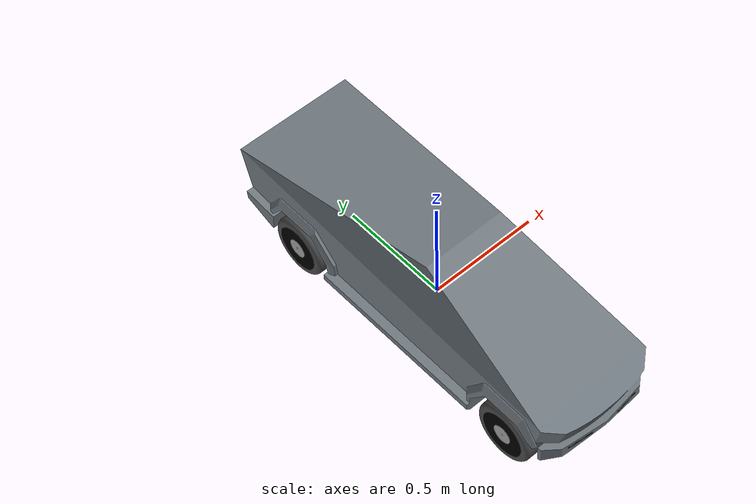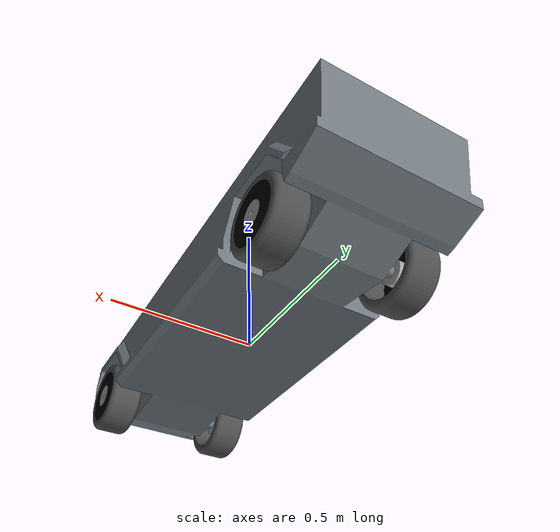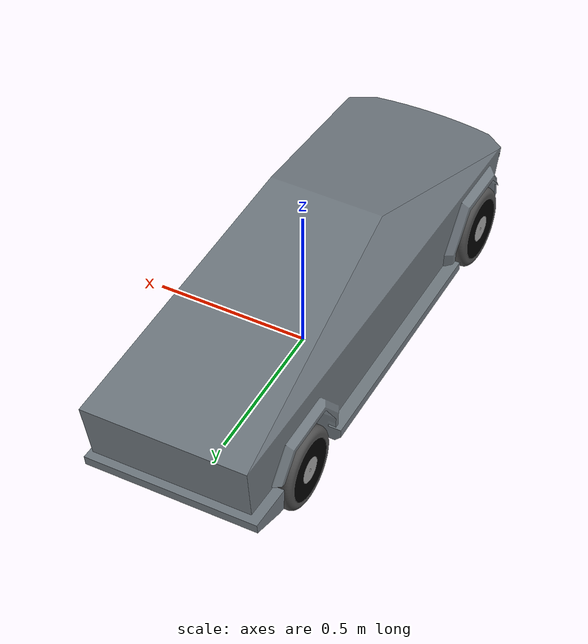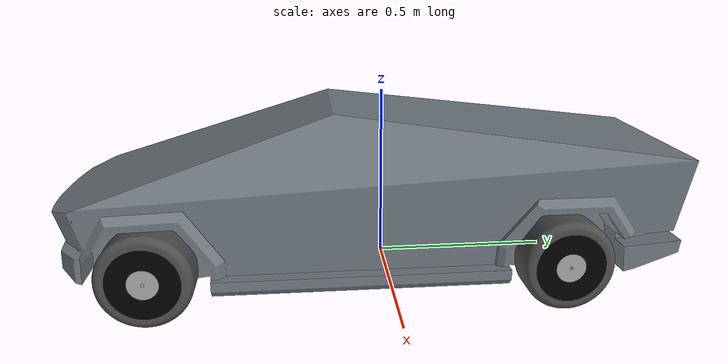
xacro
<?xml version="1.0"?>
<robot xmlns:xacro="http://ros.org/wiki/xacro" name="cybertruck_robot">

    <!-- Import External Xacro Files -->
    <xacro:include filename="$(find cybertruck_description)/urdf/carbody.xacro"/>
    <xacro:include filename="$(find cybertruck_description)/urdf/wheels.xacro"/>
    <xacro:include filename="$(find cybertruck_description)/urdf/sensors.xacro"/>

    <link name="dummy">
    </link>
    <joint name="dummy_joint" type="fixed">
        <origin xyz="0 0 0" rpy="0 0 0"/>
        <parent link="dummy"/>
        <child link="carbody"/>
    </joint>

    <!-- Create Car Body -->
    <xacro:carbody/>

    <!-- Wheels -->
    <xacro:wheel_link suffix="1" x="2.2204460492503130808e-16" y="2.7755575615628913511e-17" z="-0.054999999999999993339" x1="1.1102230246251565404e-16" y1="1.3877787807814456755e-17" r="-1.570796326794896558" p="-1.570796326794896558" yw="0" ixx="0.032071117109724343874" ixy="3.1503975095023306102e-18"  ixz="-4.7163425796709302253e-18" iyy="0.032071117109724357752" iyz="-1.0261803230676583576e-18" izz="0.051594875950933961894" x2="0" y2="0" z2="-0.054999999999999993339" i_xyz_x="1.3589014717930336387e-16" i_xyz_y="2.865589325797537375e-17" i_xyz_z="-0.014008508764301362895"/>
    <xacro:wheel_link suffix="2" x="0" y="0" z="-0.054999999999999993339" x1="0" y1="0" r="-1.570796326794896558" p="-1.570796326794896558" yw="0" ixx="0.032071117109724329997" ixy="6.2023450968327039518e-18"  ixz="1.0286902923306847666e-18" iyy="0.032071117109724329997" iyz="-3.0649033447830545848e-19" izz="0.051594875950933961894" x2="0" y2="0" z2="-0.054999999999999993339" i_xyz_x="-6.2361851381479182544e-18" i_xyz_y="1.089297430533192376e-17" i_xyz_z="-0.014008508764301362895"/>
    <xacro:wheel_link suffix="3" x="0" y="0" z="-0.054999999999999993339" x1="0" y1="0" r="-1.570796326794896558" p="-1.570796326794896558" yw="0" ixx="0.032071117109724399385" ixy="8.3713350159878664522e-19"  ixz="1.0286906400690397168e-18" iyy="0.032071117109724350813" iyz="-3.1704737612245841543e-19" izz="0.051594875950933961894" x2="0" y2="0" z2="-0.054999999999999993339" i_xyz_x="-6.2361848359611121551e-18" i_xyz_y="1.0885944194975171098e-17" i_xyz_z="-0.014008508764301362895"/>
    <xacro:wheel_link suffix="4" x="0" y="-1.3877787807814456755e-17" z="-0.054999999999999993339" x1="0" y1="0" r="-1.570796326794896558" p="-1.570796326794896558" yw="0" ixx="0.03207111710972437163" ixy="-3.7819973611508903677e-18"  ixz="1.0286901202560229468e-18" iyy="0.032071117109724357752" iyz="1.0619700477622371871e-18" izz="0.051594875950933961894" x2="0" y2="0" z2="-0.054999999999999993339" i_xyz_x="-6.2361852559968973616e-18" i_xyz_y="5.4186941231292382074e-18" i_xyz_z="-0.014008508764301362895"/>

    <!-- Wheel Joints -->
    <xacro:wheel_joint name="LFRONT" parent="carbody" child="wheel_2" x="0.23399999999999998579" y="-0.6649815680623489822" z="0.045063234419993825064" r="1.570796326794896558" p="-1.332267629550186468e-15" yw="-1.570796326794896558"/>
    <xacro:wheel_joint name="RFRONT" parent="carbody" child="wheel_3" x="-0.23399999999999998579" y="-0.6649815680623489822" z="0.045063234419993936086" r="-1.570796326794896558" p="-1.3582884816897784238e-15" yw="-1.570796326794896558"/>
    <xacro:wheel_joint name="LBACK" parent="carbody" child="wheel_1" x="0.23399999999999998579" y="0.50241941586136773523" z="0.041397847235202525629" r="1.570796326794896558" p="-1.3461454173579431407e-15" yw="-1.570796326794896558"/>
    <xacro:wheel_joint name="RBACK" parent="carbody" child="wheel_4" x="-0.23399999999999998579" y="0.50241941586136773523" z="0.041397847235202483995" r="-1.570796326794896558" p="-1.3600232051657552309e-15" yw="-1.570796326794896558"/>

    <!-- Sensors -->
    <xacro:sensor_bar suffix="rsensor" x="0.059597848948836310012" y="0.030648184454273759425" z="0" r="1.570796326794896558" p="-4.5048600266772715396e-17" yw="-8.673617379884037398e-19" i_x="-0.00085278634972848349483" i_y="-6.3531317178695118075e-05" i_z="-0.0024996223686946789089" ixx="8.2708913888452691336e-08" ixy="3.9374082852641324845e-09"  ixz="-1.812131423886424547e-08" iyy="6.722671558775725881e-06" iyz="-1.3500110115161905531e-09" izz="6.7724163537762414037e-06" j_x="0.12002181200253836391" j_y="-0.89500082170772932155" j_z="0.10088283596281659438" j_r="-1.6089173531410916329" j_p="0.0049632062983683200227" j_yw="0.12940522343665028515"/>
    <xacro:sensor_bar suffix="lsensor" x="0.059597848948836316951" y="0.030648184454273745547" z="0" r="1.570796326794896558" p="-1.5937771935536912098e-17" yw="-8.6736173798840335461e-19" i_x="-0.00085278634972849737261" i_y="-6.3531317178705526416e-05" i_z="-0.0024996223686946771742" ixx="8.2708913888452744275e-08" ixy="3.9374082852641333117e-09"  ixz="-1.8121314238863980772e-08" iyy="6.7226715587757241869e-06" iyz="-1.3500110115160968749e-09" izz="6.7724163537762414037e-06" j_x="-0.12002181200253836391" j_y="-0.89500082170772898849" j_z="0.10088283596281662213" j_r="-1.6089173531410907447" j_p="-0.0049632062983683226248" j_yw="-0.12940522343665034066"/>

</robot>

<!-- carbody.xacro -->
<robot xmlns:xacro="http://ros.org/wiki/xacro" name="cybertruck_robot">

    <xacro:macro name="carbody" >
        <link name="carbody">
            <visual>
                <origin xyz="-0.26977427303791046143 0.76915336027741387781 0.076209680177270658352" rpy="1.4444228065004858179e-15 4.9303806576313232364e-32 -3.141592653589793116" />
                <geometry>
                    <mesh filename="package://cybertruck_description/meshes/carbody/carbody.stl"/>
                </geometry>
                <material name="carbody_material">
                    <color rgba="0.43921568627450979783 0.47450980392156860699 0.50196078431372548323 1.0"/>
                </material>
            </visual>
            <collision>
                <origin xyz="-0.26977427303791046143 0.76915336027741387781 0.076209680177270658352" rpy="1.4444228065004858179e-15 4.9303806576313232364e-32 -3.141592653589793116" />
                <geometry>
                    <mesh filename="package://cybertruck_description/meshes/carbody/carbody.stl"/>
                </geometry>
            </collision>
            <inertial>
                <origin xyz="-5.2098254599286519806e-09 0.00058244025544196276201 0.20254629741490282058" rpy="0 0 0"/>
                <mass value="2434.9836614598093547" />
                <inertia ixx="504.65065693040685346" ixy="-1.1305046015830380197e-05"  ixz="-1.5282670424912572216e-06" iyy="83.974677916800374078" iyz="-11.9684094140509103" izz="524.63594699690986545" />
            </inertial>
        </link>
    </xacro:macro>

</robot>

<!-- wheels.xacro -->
<robot xmlns:xacro="http://ros.org/wiki/xacro" name="cybertruck_robot">

    <!-- Macro for defining a wheel link -->
    <xacro:macro name="wheel_link" params="suffix x y z x1 y1 r p yw ixx ixy ixz iyy iyz izz x2 y2 z2 i_xyz_x i_xyz_y i_xyz_z">

         <link name="wheel_${suffix}">
            <visual>
                <origin xyz="${x} ${y} ${z}" rpy="${r} ${p} ${yw}" />
                <geometry>
                    <mesh filename="package://cybertruck_description/meshes/wheels/rubber.stl"/>
                </geometry>
                <material name="rubber_material">
                    <color rgba="0.30196078431372547213 0.30196078431372547213 0.30196078431372547213 1.0"/>
                </material>
            </visual>

            <collision>
                <origin xyz="${x} ${y} ${z}" rpy="${r} ${p} ${yw}" />
                <geometry>
                    <mesh filename="package://cybertruck_description/meshes/wheels/rubber.stl"/>
                </geometry>
            </collision>

            <!--Make sure use x1 and y1 but same z-->
            <visual>
                <origin xyz="${x1} ${y1} ${z}" rpy="${r} ${p} ${yw}" />
                <geometry>
                    <mesh filename="package://cybertruck_description/meshes/wheels/outerrim.stl"/>
                </geometry>
                <material name="outerrim_material">
                    <color rgba="0 0 0 1.0"/>
                </material>
            </visual>

            <collision>
                <origin xyz="${x1} ${y1} ${z}" rpy="${r} ${p} ${yw}" />
                <geometry>
                    <mesh filename="package://cybertruck_description/meshes/wheels/outerrim.stl"/>
                </geometry>
            </collision>

            <!--New numbers here-->
            <visual>
                <origin xyz="${x2} ${y2} ${z2}" rpy="${r} ${p} ${yw}" />
                <geometry>
                    <mesh filename="package://cybertruck_description/meshes/wheels/innerrim.stl"/>
                </geometry>
                <material name="innerrim_material">
                    <color rgba="0.64705882352941179736 0.64705882352941179736 0.64705882352941179736 1.0"/>
                </material>
            </visual>

            <collision>
                <origin xyz="${x2} ${y2} ${z2}" rpy="${r} ${p} ${yw}" />
                <geometry>
                    <mesh filename="package://cybertruck_description/meshes/wheels/innerrim.stl"/>
                </geometry>
            </collision>

            <inertial>
                <origin xyz="${i_xyz_x} ${i_xyz_y} ${i_xyz_z}" rpy="0 0 0"/>
                <mass value="5.9376908742791583151" />
                <inertia ixx="${ixx}" ixy="${ixy}"  ixz="${ixz}" iyy="${iyy}" iyz="${iyz}" izz="${izz}" />
            </inertial>
        </link>
    </xacro:macro>

    <!-- Macro for defining a wheel joint -->
    <xacro:macro name="wheel_joint" params="name parent child x y z r p yw">
        <joint name="${name}" type="continuous">
            <parent link="${parent}" />
            <child link="${child}" />
            <origin xyz="${x} ${y} ${z}" rpy="${r} ${p} ${yw}" />
            <axis xyz="0 0 1"/>
            <limit effort="1" velocity="20" />
            <dynamics damping="0.5" friction="0.1"/>
        </joint>
    </xacro:macro>

</robot>

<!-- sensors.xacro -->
<robot xmlns:xacro="http://ros.org/wiki/xacro" name="cybertruck_robot">

    <xacro:macro name="sensor_bar" params="suffix x y z r p yw i_x i_y i_z ixx ixy ixz iyy iyz izz j_x j_y j_z j_r j_p j_yw">
        <link name="sensorbar_${suffix}">
            <visual>
                <origin xyz="${x} ${y} ${z}" rpy="${r} ${p} ${yw}" />
                <geometry>
                    <mesh filename="package://cybertruck_description/meshes/sensor/sensorbar.stl"/>
                </geometry>
                <material name="sensorbar_material">
                    <color rgba="0 0 0 1.0"/>
                </material>
            </visual>

            <collision>
                <origin xyz="${x} ${y} ${z}" rpy="${r} ${p} ${yw}" />
                <geometry>
                    <mesh filename="package://cybertruck_description/meshes/sensor/sensorbar.stl"/>
                </geometry>
            </collision>

            <inertial>
                <origin xyz="${i_x} ${i_y} ${i_z}" rpy="0 0 0"/>
                <mass value="0.0066396964508632343865" />
                <inertia ixx="${ixx}" ixy="${ixy}"  ixz="${ixz}" iyy="${iyy}" iyz="${iyz}" izz="${izz}" />
            </inertial>
        </link>

        <joint name="sensor_${suffix}" type="fixed">
            <origin xyz="${j_x} ${j_y} ${j_z}" rpy="${j_r} ${j_p} ${j_yw}" />
            <parent link="carbody"/>
            <child link="sensorbar_${suffix}"/>
            <axis xyz="0 0 1"/>
            <limit effort="1" velocity="20" />
            <joint_properties friction="0.0"/>
        </joint>

    </xacro:macro>

</robot>
